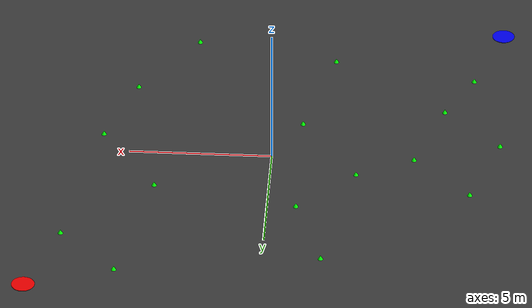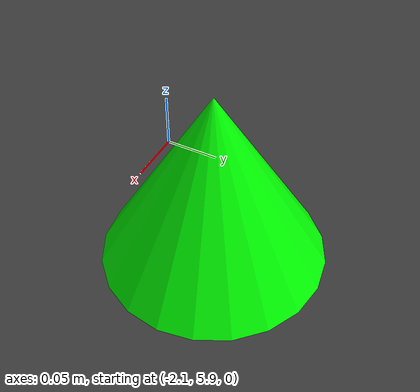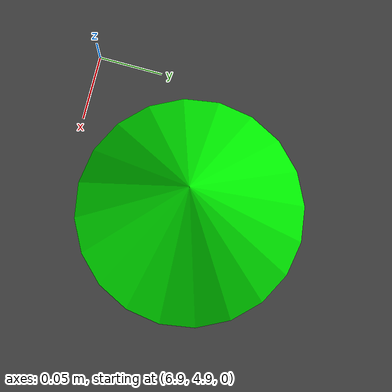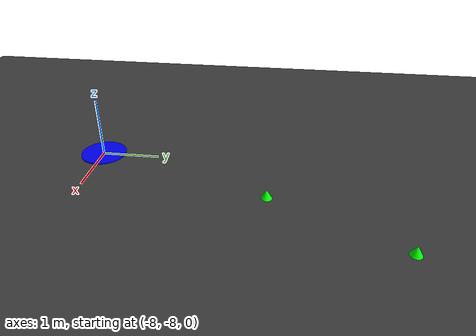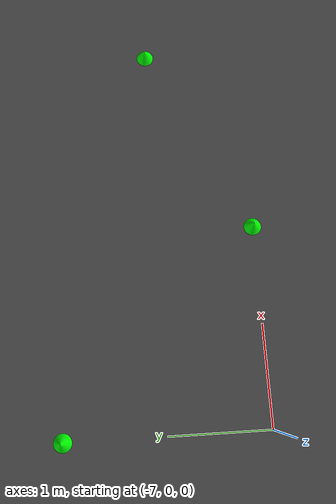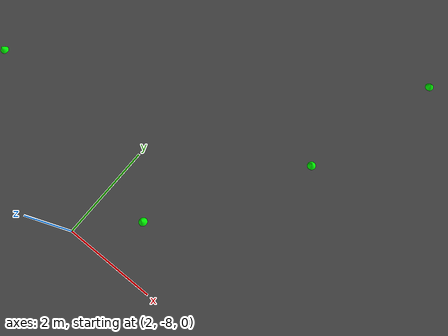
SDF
<sdf version="1.10">
  <world name="dispersed_cube_region">

    <!-- ================= SISTEMAS ================= -->
    <physics name="1ms" type="ignored">
      <max_step_size>0.001</max_step_size>
      <real_time_factor>1</real_time_factor>
      <real_time_update_rate>1000</real_time_update_rate>
    </physics>

    <plugin name="gz::sim::systems::Physics" filename="gz-sim-physics-system"/>
    <plugin name="gz::sim::systems::UserCommands" filename="gz-sim-user-commands-system"/>
    <plugin name="gz::sim::systems::SceneBroadcaster" filename="gz-sim-scene-broadcaster-system"/>
    <plugin name="gz::sim::systems::Sensors" filename="gz-sim-sensors-system">
      <render_engine>ogre2</render_engine>
    </plugin>
    <plugin filename='gz-sim-contact-system' name='gz::sim::systems::Contact'/>

    <plugin filename="gz-sim-imu-system" name="gz::sim::systems::Imu"/>
    <plugin filename="gz-sim-magnetometer-system" name="gz::sim::systems::Magnetometer"/>
    <plugin filename="gz-sim-navsat-system" name="gz::sim::systems::NavSat"/>

    <gravity>0 0 -9.8</gravity>
    <magnetic_field>21500 0 -43000</magnetic_field>
    <spherical_coordinates>
      <surface_model>EARTH_WGS84</surface_model>
      <latitude_deg>-25.33047990</latitude_deg>
      <longitude_deg>-57.51812400</longitude_deg>
      <elevation>0</elevation>
    </spherical_coordinates>

    <scene>
      <ambient>0.25 0.25 0.25 1</ambient>
      <background>0.08 0.08 0.08 1</background>
      <shadows>true</shadows>
    </scene>

    <!-- ================= SUELO ================= -->
    <model name="ground_plane">
      <static>true</static>
      <link name="link">
        <collision name="collision">
          <geometry>
            <plane>
              <normal>0 0 1</normal>
              <size>20 20</size>
            </plane>
          </geometry>
        </collision>
        <visual name="visual">
          <geometry>
            <plane>
              <normal>0 0 1</normal>
              <size>20 20</size>
            </plane>
          </geometry>
          <material>
            <ambient>0.25 0.25 0.25 1</ambient>
            <diffuse>0.25 0.25 0.25 1</diffuse>
          </material>
        </visual>
      </link>
    </model>

    <!-- ================= MARCADORES ================= -->
    <model name="start_marker">
      <static>true</static>
      <pose>-8 -8 0.01 0 0 0</pose>
      <link name="l">
        <visual name="v">
          <geometry>
            <cylinder>
              <radius>0.4</radius>
              <length>0.02</length>
            </cylinder>
          </geometry>
          <material>
            <ambient>0 0 1 1</ambient>
            <diffuse>0 0 1 1</diffuse>
          </material>
        </visual>
      </link>
    </model>

    <model name="goal_marker">
      <static>true</static>
      <pose>8 8 0.01 0 0 0</pose>
      <link name="l">
        <visual name="v">
          <geometry>
            <cylinder>
              <radius>0.4</radius>
              <length>0.02</length>
            </cylinder>
          </geometry>
          <material>
            <ambient>1 0 0 1</ambient>
            <diffuse>1 0 0 1</diffuse>
          </material>
        </visual>
      </link>
    </model>

    <!-- ================= TRONCOS DE CONO VERDES ================= -->
    <!-- Altura: 0.15  | Base mayor aprox 0.09 -->

    <!-- BANDA IZQUIERDA -->
    <model name="cone_01"><static>true</static><pose>-7 -5 0.075 0 0 0</pose><link name="l"><collision name="c"><geometry><cylinder><radius>0.075</radius><length>0.15</length></cylinder></geometry></collision><visual name="v"><geometry><cone><radius>0.09</radius><length>0.15</length></cone></geometry><material><ambient>0 1 0 1</ambient><diffuse>0 1 0 1</diffuse></material></visual></link></model>
    <model name="cone_02"><static>true</static><pose>-6 -3 0.075 0 0 0</pose><link name="l"><collision name="c"><geometry><cylinder><radius>0.075</radius><length>0.15</length></cylinder></geometry></collision><visual name="v"><geometry><cone><radius>0.09</radius><length>0.15</length></cone></geometry><material><ambient>0 1 0 1</ambient><diffuse>0 1 0 1</diffuse></material></visual></link></model>
    <model name="cone_03"><static>true</static><pose>-8 -1 0.075 0 0 0</pose><link name="l"><collision name="c"><geometry><cylinder><radius>0.075</radius><length>0.15</length></cylinder></geometry></collision><visual name="v"><geometry><cone><radius>0.09</radius><length>0.15</length></cone></geometry><material><ambient>0 1 0 1</ambient><diffuse>0 1 0 1</diffuse></material></visual></link></model>
    <model name="cone_04"><static>true</static><pose>-5 0 0.075 0 0 0</pose><link name="l"><collision name="c"><geometry><cylinder><radius>0.075</radius><length>0.15</length></cylinder></geometry></collision><visual name="v"><geometry><cone><radius>0.09</radius><length>0.15</length></cone></geometry><material><ambient>0 1 0 1</ambient><diffuse>0 1 0 1</diffuse></material></visual></link></model>
    <model name="cone_05"><static>true</static><pose>-7 2 0.075 0 0 0</pose><link name="l"><collision name="c"><geometry><cylinder><radius>0.075</radius><length>0.15</length></cylinder></geometry></collision><visual name="v"><geometry><cone><radius>0.09</radius><length>0.15</length></cone></geometry><material><ambient>0 1 0 1</ambient><diffuse>0 1 0 1</diffuse></material></visual></link></model>

    <!-- BANDA CENTRAL -->
    <model name="cone_06"><static>true</static><pose>-2 -6 0.075 0 0 0</pose><link name="l"><collision name="c"><geometry><cylinder><radius>0.075</radius><length>0.15</length></cylinder></geometry></collision><visual name="v"><geometry><cone><radius>0.09</radius><length>0.15</length></cone></geometry><material><ambient>0 1 0 1</ambient><diffuse>0 1 0 1</diffuse></material></visual></link></model>
    <model name="cone_07"><static>true</static><pose>-1 -2 0.075 0 0 0</pose><link name="l"><collision name="c"><geometry><cylinder><radius>0.075</radius><length>0.15</length></cylinder></geometry></collision><visual name="v"><geometry><cone><radius>0.09</radius><length>0.15</length></cone></geometry><material><ambient>0 1 0 1</ambient><diffuse>0 1 0 1</diffuse></material></visual></link></model>
    <model name="cone_08"><static>true</static><pose>-3 1 0.075 0 0 0</pose><link name="l"><collision name="c"><geometry><cylinder><radius>0.075</radius><length>0.15</length></cylinder></geometry></collision><visual name="v"><geometry><cone><radius>0.09</radius><length>0.15</length></cone></geometry><material><ambient>0 1 0 1</ambient><diffuse>0 1 0 1</diffuse></material></visual></link></model>
    <model name="cone_09"><static>true</static><pose>-1 3 0.075 0 0 0</pose><link name="l"><collision name="c"><geometry><cylinder><radius>0.075</radius><length>0.15</length></cylinder></geometry></collision><visual name="v"><geometry><cone><radius>0.09</radius><length>0.15</length></cone></geometry><material><ambient>0 1 0 1</ambient><diffuse>0 1 0 1</diffuse></material></visual></link></model>
    <model name="cone_10"><static>true</static><pose>-2 6 0.075 0 0 0</pose><link name="l"><collision name="c"><geometry><cylinder><radius>0.075</radius><length>0.15</length></cylinder></geometry></collision><visual name="v"><geometry><cone><radius>0.09</radius><length>0.15</length></cone></geometry><material><ambient>0 1 0 1</ambient><diffuse>0 1 0 1</diffuse></material></visual></link></model>

    <!-- BANDA DERECHA -->
    <model name="cone_11"><static>true</static><pose>3 -7 0.075 0 0 0</pose><link name="l"><collision name="c"><geometry><cylinder><radius>0.075</radius><length>0.15</length></cylinder></geometry></collision><visual name="v"><geometry><cone><radius>0.09</radius><length>0.15</length></cone></geometry><material><ambient>0 1 0 1</ambient><diffuse>0 1 0 1</diffuse></material></visual></link></model>
    <model name="cone_12"><static>true</static><pose>5 -4 0.075 0 0 0</pose><link name="l"><collision name="c"><geometry><cylinder><radius>0.075</radius><length>0.15</length></cylinder></geometry></collision><visual name="v"><geometry><cone><radius>0.09</radius><length>0.15</length></cone></geometry><material><ambient>0 1 0 1</ambient><diffuse>0 1 0 1</diffuse></material></visual></link></model>
    <model name="cone_13"><static>true</static><pose>6 -1 0.075 0 0 0</pose><link name="l"><collision name="c"><geometry><cylinder><radius>0.075</radius><length>0.15</length></cylinder></geometry></collision><visual name="v"><geometry><cone><radius>0.09</radius><length>0.15</length></cone></geometry><material><ambient>0 1 0 1</ambient><diffuse>0 1 0 1</diffuse></material></visual></link></model>
    <model name="cone_14"><static>true</static><pose>4 2 0.075 0 0 0</pose><link name="l"><collision name="c"><geometry><cylinder><radius>0.075</radius><length>0.15</length></cylinder></geometry></collision><visual name="v"><geometry><cone><radius>0.09</radius><length>0.15</length></cone></geometry><material><ambient>0 1 0 1</ambient><diffuse>0 1 0 1</diffuse></material></visual></link></model>
    <model name="cone_15"><static>true</static><pose>7 5 0.075 0 0 0</pose><link name="l"><collision name="c"><geometry><cylinder><radius>0.075</radius><length>0.15</length></cylinder></geometry></collision><visual name="v"><geometry><cone><radius>0.09</radius><length>0.15</length></cone></geometry><material><ambient>0 1 0 1</ambient><diffuse>0 1 0 1</diffuse></material></visual></link></model>
    <model name="cone_16"><static>true</static><pose>5 7 0.075 0 0 0</pose><link name="l"><collision name="c"><geometry><cylinder><radius>0.075</radius><length>0.15</length></cylinder></geometry></collision><visual name="v"><geometry><cone><radius>0.09</radius><length>0.15</length></cone></geometry><material><ambient>0 1 0 1</ambient><diffuse>0 1 0 1</diffuse></material></visual></link></model>

    <!-- ================= LUZ ================= -->
    <light name="sun" type="directional">
      <pose>0 0 12 0 0 0</pose>
      <direction>-0.5 0.1 -0.9</direction>
      <intensity>1</intensity>
    </light>

  </world>
</sdf>
